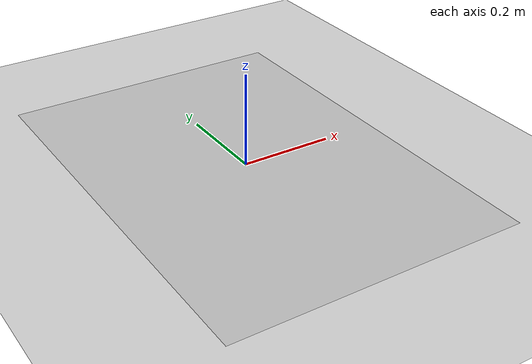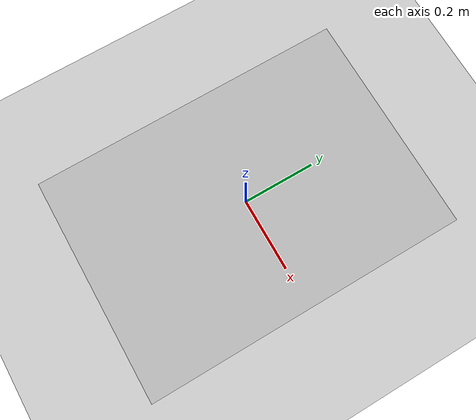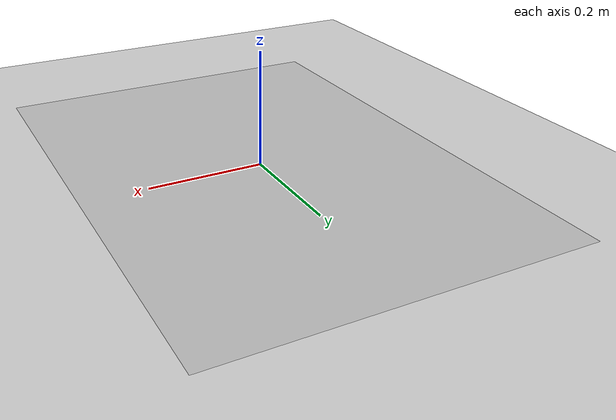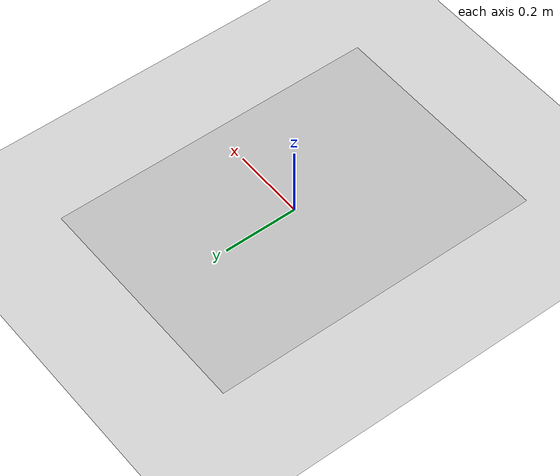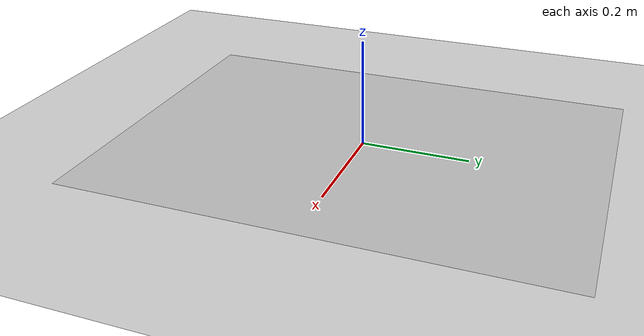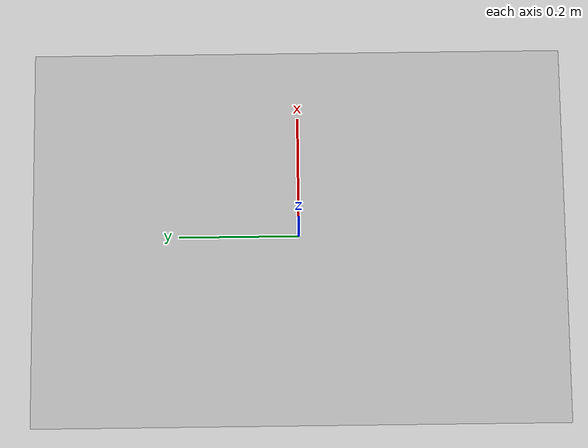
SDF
<?xml version="1.0" ?>
<sdf version="1.6">
  <world name="Table">
    <scene>
      <shadows>0</shadows>
    </scene>

    <include>
      <uri>model://sun</uri>
    </include>

    <model name="linefollower_samplecourse">
      <static>true</static>
      <include>
        <uri>model://linefollower_samplecourse</uri>
      </include>
      <pose>0 0 0.001 0 0 0</pose>
    </model>

    <model name="ground_plane">
      <include>
        <uri>model://ground_plane</uri>
      </include>
    </model>
  </world>
</sdf>

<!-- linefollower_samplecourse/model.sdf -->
<sdf version="1.5">
  <model name="linefollower_samplecourse">
    <link name="link">
      <collision name="collision">
        <pose>0 0 0 0 0 0</pose>
        <geometry>
          <mesh>
            <uri>model://linefollower_samplecourse/meshes/linefollower_samplecourse.dae</uri>
            <scale>1 1 1</scale>
          </mesh>
        </geometry>
        <surface>
          <friction>
            <ode>
              <mu>0.9</mu>
              <mu2>0.9</mu2>
            </ode>
          </friction>
        </surface>
      </collision>
      <visual name="visual">
        <pose>0 0 0 0 0 0</pose>
        <geometry>
          <mesh>
            <uri>model://linefollower_samplecourse/meshes/linefollower_samplecourse.dae</uri>
            <scale>1 1 1</scale>
          </mesh>
        </geometry>
      </visual>
    </link>
  </model>
</sdf>
